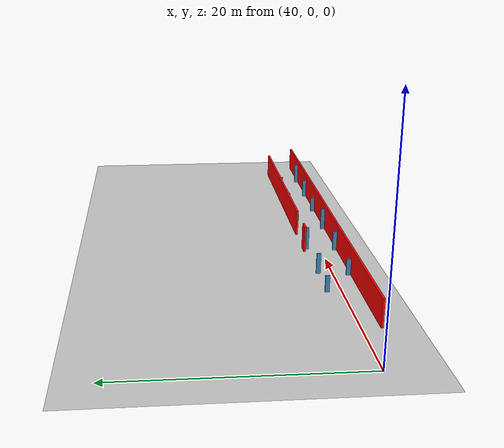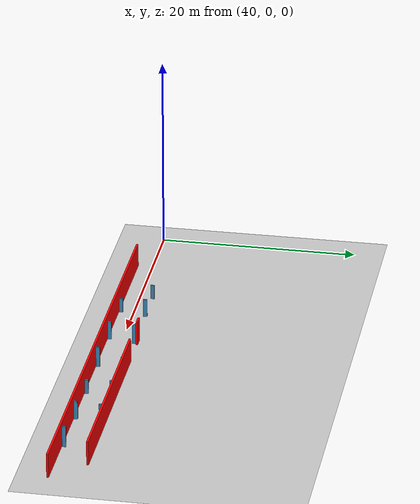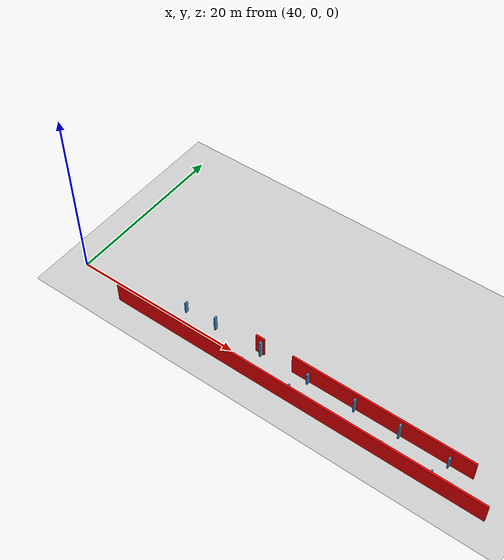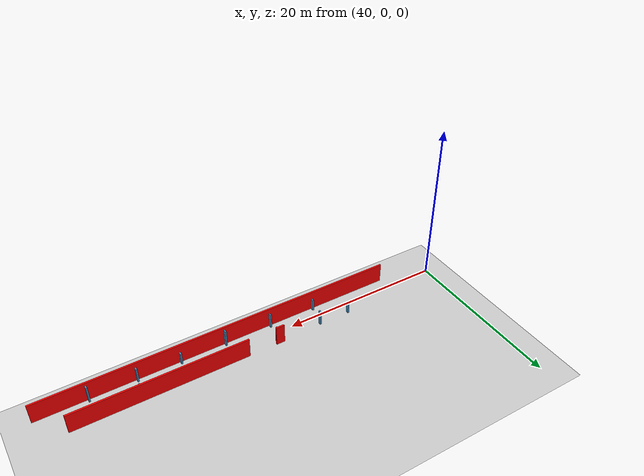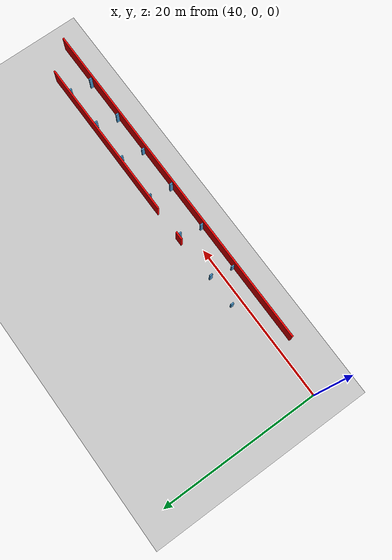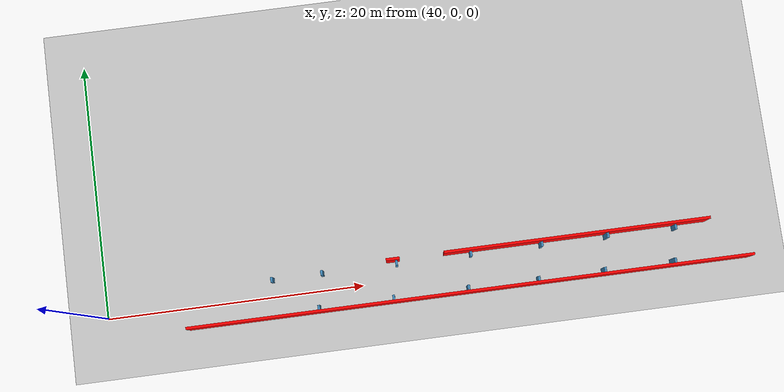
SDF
<sdf version="1.6">
 <world name="real_branch_tunnel">
  <include><uri>model://sun</uri></include>
  <include><uri>model://ground_plane</uri></include>
  <model name="main_wall_right3">
   <static>true</static>
   <pose>68.125 -1.6 1.25 0 0 0</pose>
   <link name="link">
    <collision name="collision"><geometry><box><size>43.75 0.2 2.5</size></box></geometry></collision>
    <visual name="visual">
     <geometry><box><size>43.75 0.2 2.5</size></box></geometry>
     <material>
      <ambient>1 0 0 1</ambient>
      <diffuse>1 0 0 1</diffuse>
      <specular>0.3 0.3 0.3 1</specular>
      <emissive>0.15 0 0 1</emissive>
     </material>
    </visual>
   </link>
  </model>
  <model name="main_wall_left3">
   <static>true</static>
   <pose>62.5 1.6 1.25 0 0 0</pose>
   <link name="link">
    <collision name="collision"><geometry><box><size>1.05 0.2 2.5</size></box></geometry></collision>
    <visual name="visual">
     <geometry><box><size>1.05 0.2 2.5</size></box></geometry>
     <material>
      <ambient>1 0 0 1</ambient>
      <diffuse>1 0 0 1</diffuse>
      <specular>0.3 0.3 0.3 1</specular>
      <emissive>0.15 0 0 1</emissive>
     </material>
    </visual>
   </link>
  </model>
  <model name="main_wall_left4">
   <static>true</static>
   <pose>76.775 1.6 1.25 0 0 0</pose>
   <link name="link">
    <collision name="collision"><geometry><box><size>20.65 0.2 2.5</size></box></geometry></collision>
    <visual name="visual">
     <geometry><box><size>20.65 0.2 2.5</size></box></geometry>
     <material>
      <ambient>1 0 0 1</ambient>
      <diffuse>1 0 0 1</diffuse>
      <specular>0.3 0.3 0.3 1</specular>
      <emissive>0.15 0 0 1</emissive>
     </material>
    </visual>
   </link>
  </model>
  <model name="benchmark_pilaster_12">
   <static>true</static>
   <pose>56.4 -1.29 0.75 0 0 0</pose>
   <link name="link">
    <collision name="collision"><geometry><box><size>0.18 0.38 1.5</size></box></geometry></collision>
    <visual name="visual">
     <geometry><box><size>0.18 0.38 1.5</size></box></geometry>
     <material><ambient>0.25 0.55 0.75 1</ambient><diffuse>0.25 0.55 0.75 1</diffuse></material>
    </visual>
   </link>
  </model>
  <model name="benchmark_pilaster_13">
   <static>true</static>
   <pose>62.2 -1.29 0.95 0 0 0</pose>
   <link name="link">
    <collision name="collision"><geometry><box><size>0.18 0.38 1.9</size></box></geometry></collision>
    <visual name="visual">
     <geometry><box><size>0.18 0.38 1.9</size></box></geometry>
     <material><ambient>0.25 0.55 0.75 1</ambient><diffuse>0.25 0.55 0.75 1</diffuse></material>
    </visual>
   </link>
  </model>
  <model name="benchmark_pilaster_14">
   <static>true</static>
   <pose>68 -1.29 1.075 0 0 0</pose>
   <link name="link">
    <collision name="collision"><geometry><box><size>0.18 0.38 2.15</size></box></geometry></collision>
    <visual name="visual">
     <geometry><box><size>0.18 0.38 2.15</size></box></geometry>
     <material><ambient>0.25 0.55 0.75 1</ambient><diffuse>0.25 0.55 0.75 1</diffuse></material>
    </visual>
   </link>
  </model>
  <model name="benchmark_pilaster_15">
   <static>true</static>
   <pose>73.5 -1.29 0.75 0 0 0</pose>
   <link name="link">
    <collision name="collision"><geometry><box><size>0.18 0.38 1.5</size></box></geometry></collision>
    <visual name="visual">
     <geometry><box><size>0.18 0.38 1.5</size></box></geometry>
     <material><ambient>0.25 0.55 0.75 1</ambient><diffuse>0.25 0.55 0.75 1</diffuse></material>
    </visual>
   </link>
  </model>
  <model name="benchmark_pilaster_16">
   <static>true</static>
   <pose>78.6 -1.29 0.95 0 0 0</pose>
   <link name="link">
    <collision name="collision"><geometry><box><size>0.18 0.38 1.9</size></box></geometry></collision>
    <visual name="visual">
     <geometry><box><size>0.18 0.38 1.9</size></box></geometry>
     <material><ambient>0.25 0.55 0.75 1</ambient><diffuse>0.25 0.55 0.75 1</diffuse></material>
    </visual>
   </link>
  </model>
  <model name="benchmark_pilaster_17">
   <static>true</static>
   <pose>84 -1.29 1.075 0 0 0</pose>
   <link name="link">
    <collision name="collision"><geometry><box><size>0.18 0.38 2.15</size></box></geometry></collision>
    <visual name="visual">
     <geometry><box><size>0.18 0.38 2.15</size></box></geometry>
     <material><ambient>0.25 0.55 0.75 1</ambient><diffuse>0.25 0.55 0.75 1</diffuse></material>
    </visual>
   </link>
  </model>
  <model name="benchmark_pilaster_28">
   <static>true</static>
   <pose>53.05 1.29 0.75 0 0 0</pose>
   <link name="link">
    <collision name="collision"><geometry><box><size>0.18 0.38 1.5</size></box></geometry></collision>
    <visual name="visual">
     <geometry><box><size>0.18 0.38 1.5</size></box></geometry>
     <material><ambient>0.25 0.55 0.75 1</ambient><diffuse>0.25 0.55 0.75 1</diffuse></material>
    </visual>
   </link>
  </model>
  <model name="benchmark_pilaster_29">
   <static>true</static>
   <pose>56.949999999999996 1.29 0.95 0 0 0</pose>
   <link name="link">
    <collision name="collision"><geometry><box><size>0.18 0.38 1.9</size></box></geometry></collision>
    <visual name="visual">
     <geometry><box><size>0.18 0.38 1.9</size></box></geometry>
     <material><ambient>0.25 0.55 0.75 1</ambient><diffuse>0.25 0.55 0.75 1</diffuse></material>
    </visual>
   </link>
  </model>
  <model name="benchmark_pilaster_30">
   <static>true</static>
   <pose>62.75 1.29 1.075 0 0 0</pose>
   <link name="link">
    <collision name="collision"><geometry><box><size>0.18 0.38 2.15</size></box></geometry></collision>
    <visual name="visual">
     <geometry><box><size>0.18 0.38 2.15</size></box></geometry>
     <material><ambient>0.25 0.55 0.75 1</ambient><diffuse>0.25 0.55 0.75 1</diffuse></material>
    </visual>
   </link>
  </model>
  <model name="benchmark_pilaster_31">
   <static>true</static>
   <pose>68.55 1.29 0.75 0 0 0</pose>
   <link name="link">
    <collision name="collision"><geometry><box><size>0.18 0.38 1.5</size></box></geometry></collision>
    <visual name="visual">
     <geometry><box><size>0.18 0.38 1.5</size></box></geometry>
     <material><ambient>0.25 0.55 0.75 1</ambient><diffuse>0.25 0.55 0.75 1</diffuse></material>
    </visual>
   </link>
  </model>
  <model name="benchmark_pilaster_32">
   <static>true</static>
   <pose>74.05 1.29 0.95 0 0 0</pose>
   <link name="link">
    <collision name="collision"><geometry><box><size>0.18 0.38 1.9</size></box></geometry></collision>
    <visual name="visual">
     <geometry><box><size>0.18 0.38 1.9</size></box></geometry>
     <material><ambient>0.25 0.55 0.75 1</ambient><diffuse>0.25 0.55 0.75 1</diffuse></material>
    </visual>
   </link>
  </model>
  <model name="benchmark_pilaster_33">
   <static>true</static>
   <pose>79.14999999999999 1.29 1.075 0 0 0</pose>
   <link name="link">
    <collision name="collision"><geometry><box><size>0.18 0.38 2.15</size></box></geometry></collision>
    <visual name="visual">
     <geometry><box><size>0.18 0.38 2.15</size></box></geometry>
     <material><ambient>0.25 0.55 0.75 1</ambient><diffuse>0.25 0.55 0.75 1</diffuse></material>
    </visual>
   </link>
  </model>
  <model name="benchmark_pilaster_34">
   <static>true</static>
   <pose>84.55 1.29 0.75 0 0 0</pose>
   <link name="link">
    <collision name="collision"><geometry><box><size>0.18 0.38 1.5</size></box></geometry></collision>
    <visual name="visual">
     <geometry><box><size>0.18 0.38 1.5</size></box></geometry>
     <material><ambient>0.25 0.55 0.75 1</ambient><diffuse>0.25 0.55 0.75 1</diffuse></material>
    </visual>
   </link>
  </model>
 </world>
</sdf>
